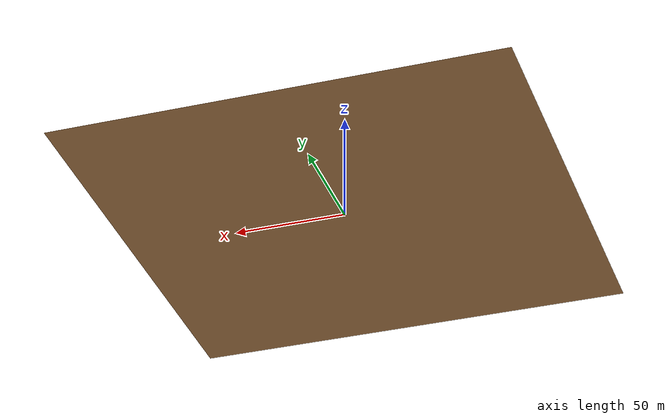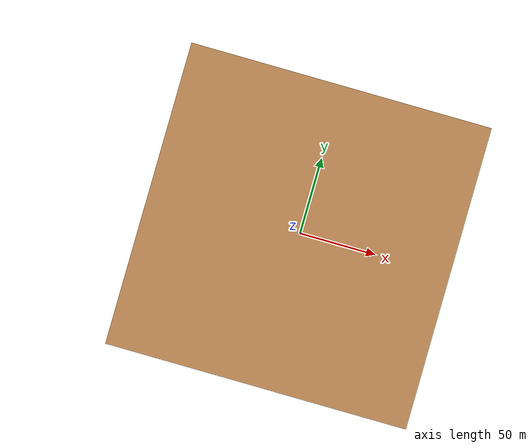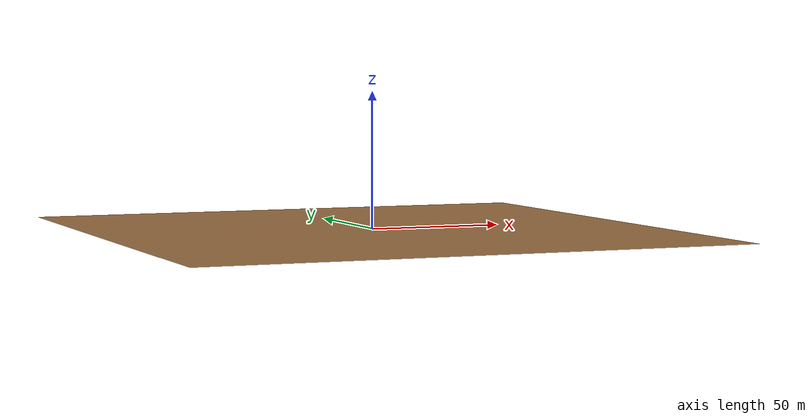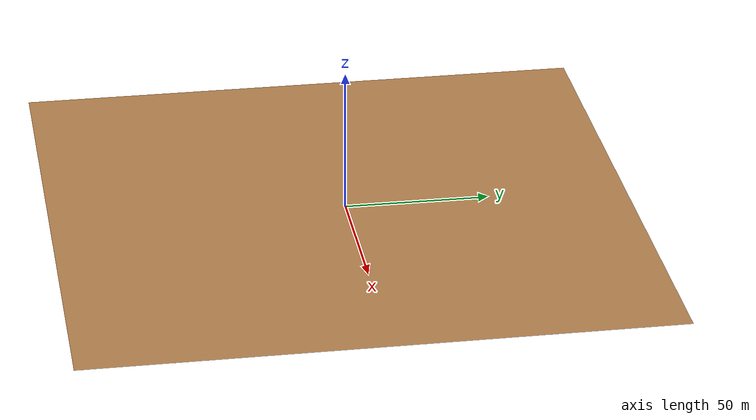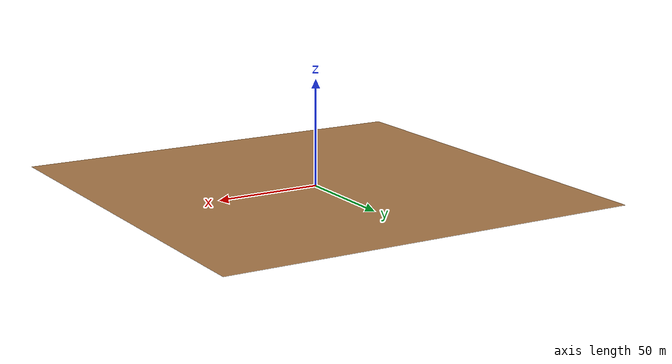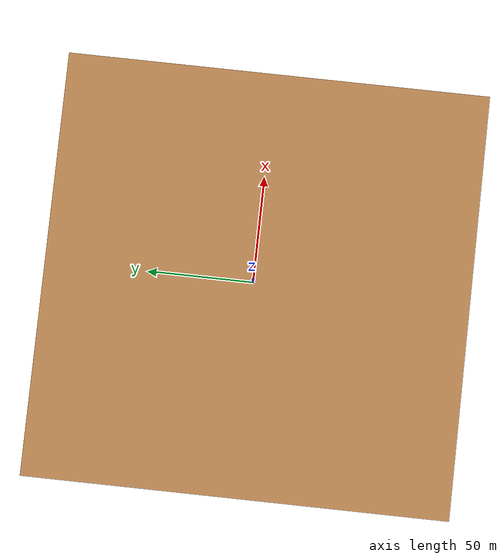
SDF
<?xml version='1.0'?>
<sdf version='1.6'>
  <model name='Untitled'>
    <pose frame=''>-0.610001 -1.765 0 0 -0 0</pose>
    <link name='Wall_0'>
      <collision name='Wall_0_Collision'>
        <geometry>
          <box>
            <size>200.35 200 0.001</size>
          </box>
        </geometry>
        <pose frame=''>0 0 0.0005 0 -0 0</pose>
      </collision>
      <visual name='Wall_0_Visual'>
        <pose frame=''>0 0 0.0005 0 -0 0</pose>
        <geometry>
          <box>
            <size>200.35 200 0.001</size>
          </box>
        </geometry>
        <material>
          <script>
            <uri>file://media/materials/scripts/gazebo.material</uri>
            <name>Gazebo/Wood</name>
          </script>
          <ambient>1 1 1 1</ambient>
        </material>
        <meta>
          <layer>0</layer>
        </meta>
      </visual>
      <pose frame=''>1e-06 -1e-06 0 0 -0 -1.5708</pose>
    </link>
    <static>1</static>
  </model>
</sdf>
